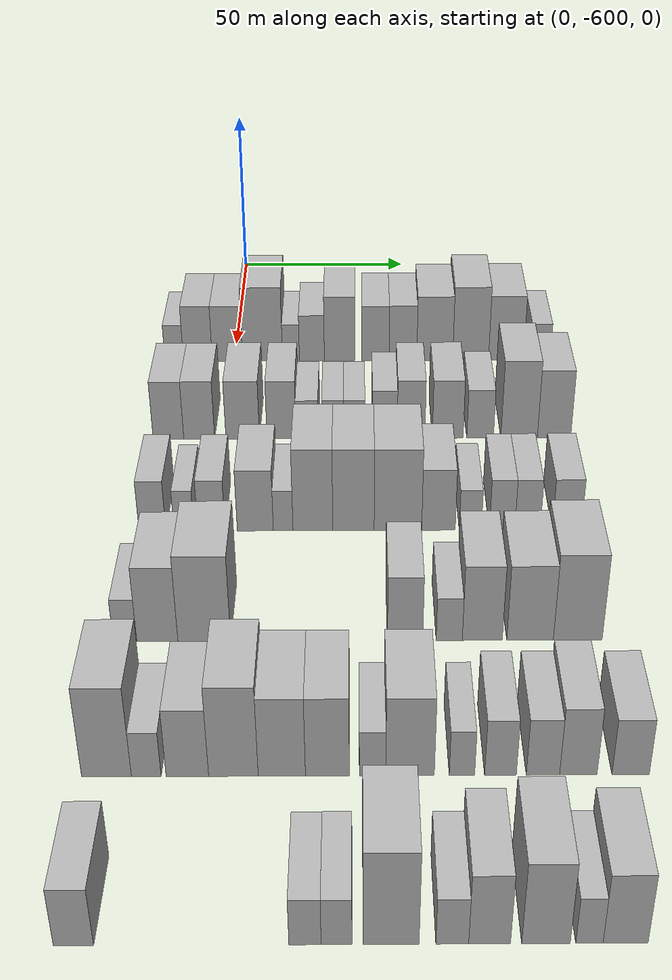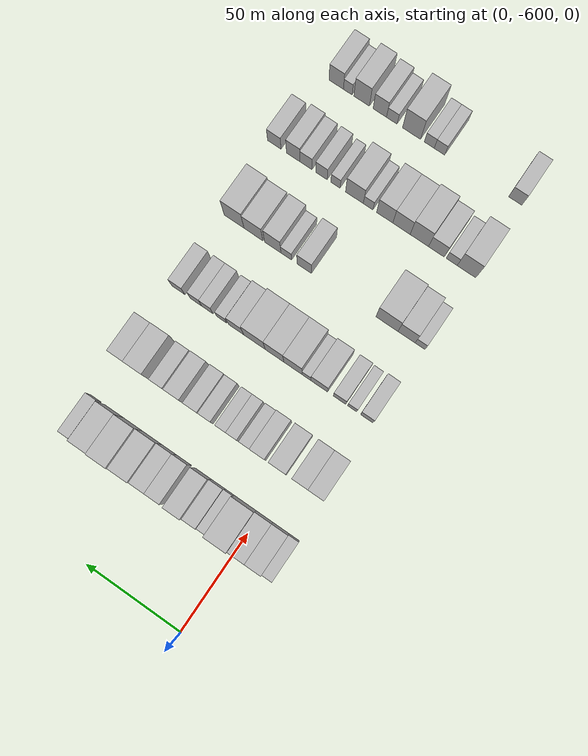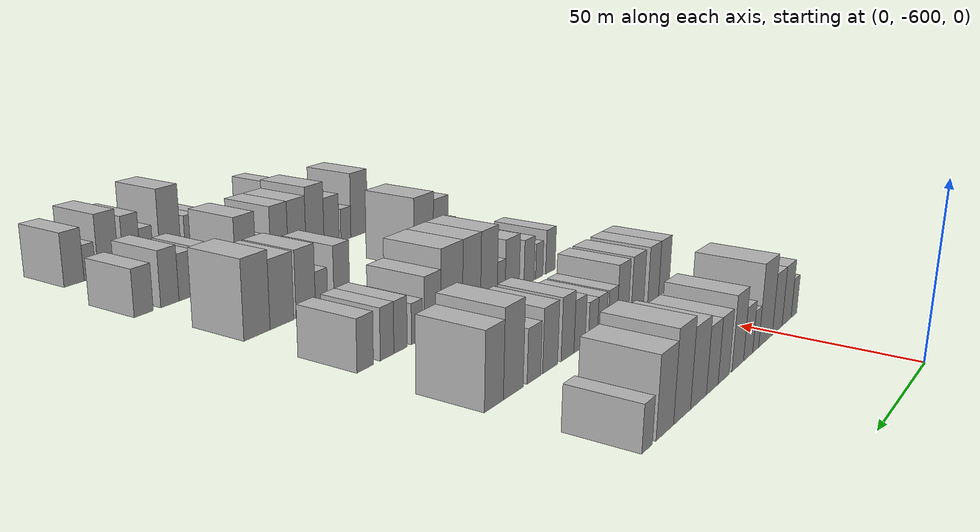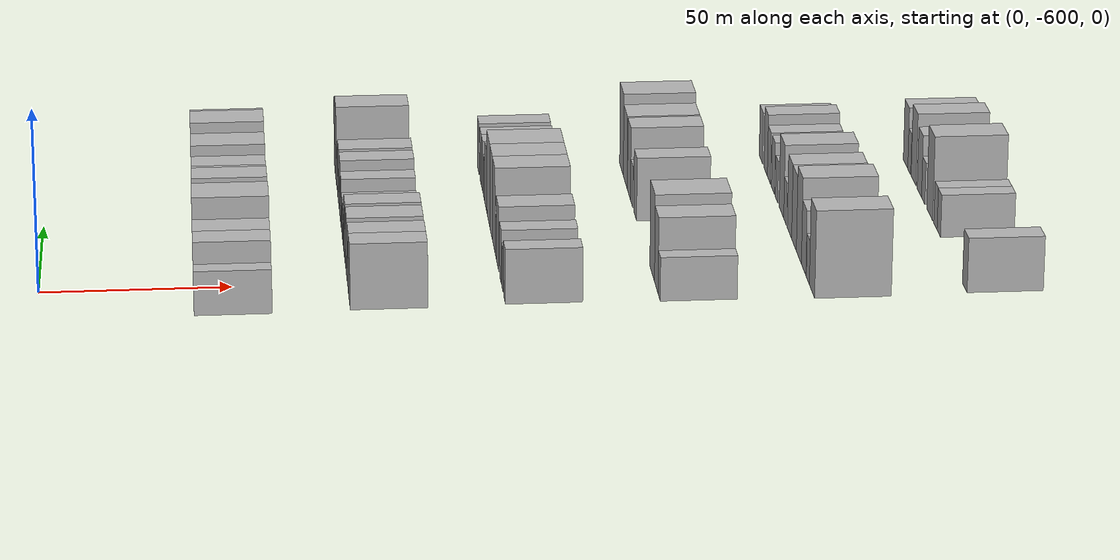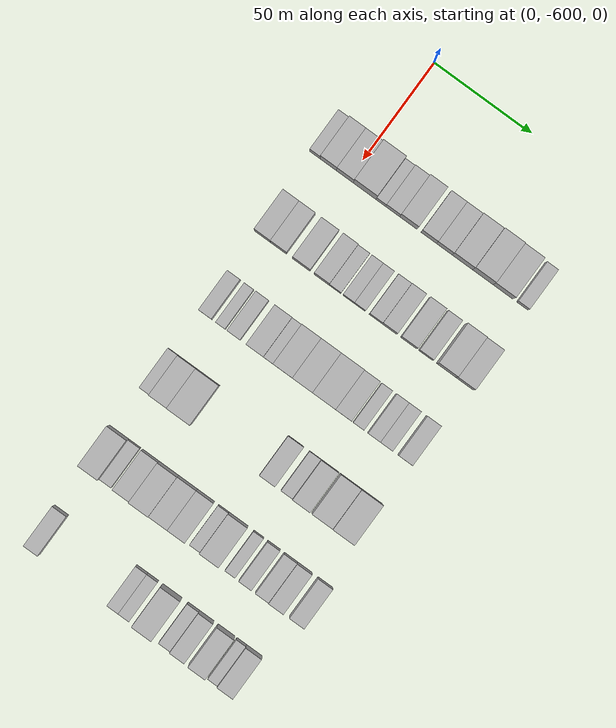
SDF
<sdf version="1.6">
 <world name="default">
  <model name="building_1">
   <static>1</static>
   <pose>50.0000 -617.3357 0 0.000000 0.000000 0.000000</pose>
   <link name="link">
    <pose>0 0 6.00 0 0 0</pose>
    <collision name="collision"><geometry><box><size>20.0000 5.3287 12.0000</size></box></geometry></collision>
    <visual name="visual">
     <cast_shadows>0</cast_shadows>
     <geometry><box><size>20.0000 5.3287 12.0000</size></box></geometry>
     <material>
      <script>
       <uri>model://HANNAS_wall/materials/scripts</uri>
       <uri>model://HANNAS_wall/materials/textures</uri>
       <name>vrc/HANNAS_wall</name>
      </script>
     </material>
    </visual>
   </link>
  </model>
  <model name="building_2">
   <static>1</static>
   <pose>50.0000 -610.4913 0 0.000000 0.000000 0.000000</pose>
   <link name="link">
    <pose>0 0 9.00 0 0 0</pose>
    <collision name="collision"><geometry><box><size>20.0000 8.3600 18.0000</size></box></geometry></collision>
    <visual name="visual">
     <cast_shadows>0</cast_shadows>
     <geometry><box><size>20.0000 8.3600 18.0000</size></box></geometry>
     <material>
      <script>
       <uri>model://HANNAS_wall/materials/scripts</uri>
       <uri>model://HANNAS_wall/materials/textures</uri>
       <name>vrc/HANNAS_wall</name>
      </script>
     </material>
    </visual>
   </link>
  </model>
  <model name="building_3">
   <static>1</static>
   <pose>50.0000 -601.9444 0 0.000000 0.000000 0.000000</pose>
   <link name="link">
    <pose>0 0 9.00 0 0 0</pose>
    <collision name="collision"><geometry><box><size>20.0000 8.7338 18.0000</size></box></geometry></collision>
    <visual name="visual">
     <cast_shadows>0</cast_shadows>
     <geometry><box><size>20.0000 8.7338 18.0000</size></box></geometry>
     <material>
      <script>
       <uri>model://HANNAS_wall/materials/scripts</uri>
       <uri>model://HANNAS_wall/materials/textures</uri>
       <name>vrc/HANNAS_wall</name>
      </script>
     </material>
    </visual>
   </link>
  </model>
  <model name="building_4">
   <static>1</static>
   <pose>50.0000 -591.7958 0 0.000000 0.000000 0.000000</pose>
   <link name="link">
    <pose>0 0 12.00 0 0 0</pose>
    <collision name="collision"><geometry><box><size>20.0000 11.5633 24.0000</size></box></geometry></collision>
    <visual name="visual">
     <cast_shadows>0</cast_shadows>
     <geometry><box><size>20.0000 11.5633 24.0000</size></box></geometry>
     <material>
      <script>
       <uri>model://HANNAS_wall/materials/scripts</uri>
       <uri>model://HANNAS_wall/materials/textures</uri>
       <name>vrc/HANNAS_wall</name>
      </script>
     </material>
    </visual>
   </link>
  </model>
  <model name="building_5">
   <static>1</static>
   <pose>50.0000 -583.5711 0 0.000000 0.000000 0.000000</pose>
   <link name="link">
    <pose>0 0 6.00 0 0 0</pose>
    <collision name="collision"><geometry><box><size>20.0000 4.8861 12.0000</size></box></geometry></collision>
    <visual name="visual">
     <cast_shadows>0</cast_shadows>
     <geometry><box><size>20.0000 4.8861 12.0000</size></box></geometry>
     <material>
      <script>
       <uri>model://HANNAS_wall/materials/scripts</uri>
       <uri>model://HANNAS_wall/materials/textures</uri>
       <name>vrc/HANNAS_wall</name>
      </script>
     </material>
    </visual>
   </link>
  </model>
  <model name="building_6">
   <static>1</static>
   <pose>50.0000 -577.5189 0 0.000000 0.000000 0.000000</pose>
   <link name="link">
    <pose>0 0 7.50 0 0 0</pose>
    <collision name="collision"><geometry><box><size>20.0000 7.2183 15.0000</size></box></geometry></collision>
    <visual name="visual">
     <cast_shadows>0</cast_shadows>
     <geometry><box><size>20.0000 7.2183 15.0000</size></box></geometry>
     <material>
      <script>
       <uri>model://HANNAS_wall/materials/scripts</uri>
       <uri>model://HANNAS_wall/materials/textures</uri>
       <name>vrc/HANNAS_wall</name>
      </script>
     </material>
    </visual>
   </link>
  </model>
  <model name="building_7">
   <static>1</static>
   <pose>50.0000 -569.4962 0 0.000000 0.000000 0.000000</pose>
   <link name="link">
    <pose>0 0 10.50 0 0 0</pose>
    <collision name="collision"><geometry><box><size>20.0000 8.8271 21.0000</size></box></geometry></collision>
    <visual name="visual">
     <cast_shadows>0</cast_shadows>
     <geometry><box><size>20.0000 8.8271 21.0000</size></box></geometry>
     <material>
      <script>
       <uri>model://HANNAS_wall/materials/scripts</uri>
       <uri>model://HANNAS_wall/materials/textures</uri>
       <name>vrc/HANNAS_wall</name>
      </script>
     </material>
    </visual>
   </link>
  </model>
  <model name="building_8">
   <static>1</static>
   <pose>50.0000 -559.1384 0 0.000000 0.000000 0.000000</pose>
   <link name="link">
    <pose>0 0 9.00 0 0 0</pose>
    <collision name="collision"><geometry><box><size>20.0000 7.8884 18.0000</size></box></geometry></collision>
    <visual name="visual">
     <cast_shadows>0</cast_shadows>
     <geometry><box><size>20.0000 7.8884 18.0000</size></box></geometry>
     <material>
      <script>
       <uri>model://HANNAS_wall/materials/scripts</uri>
       <uri>model://HANNAS_wall/materials/textures</uri>
       <name>vrc/HANNAS_wall</name>
      </script>
     </material>
    </visual>
   </link>
  </model>
  <model name="building_9">
   <static>1</static>
   <pose>50.0000 -551.1819 0 0.000000 0.000000 0.000000</pose>
   <link name="link">
    <pose>0 0 9.00 0 0 0</pose>
    <collision name="collision"><geometry><box><size>20.0000 8.0247 18.0000</size></box></geometry></collision>
    <visual name="visual">
     <cast_shadows>0</cast_shadows>
     <geometry><box><size>20.0000 8.0247 18.0000</size></box></geometry>
     <material>
      <script>
       <uri>model://HANNAS_wall/materials/scripts</uri>
       <uri>model://HANNAS_wall/materials/textures</uri>
       <name>vrc/HANNAS_wall</name>
      </script>
     </material>
    </visual>
   </link>
  </model>
  <model name="building_10">
   <static>1</static>
   <pose>50.0000 -541.9801 0 0.000000 0.000000 0.000000</pose>
   <link name="link">
    <pose>0 0 10.50 0 0 0</pose>
    <collision name="collision"><geometry><box><size>20.0000 10.3789 21.0000</size></box></geometry></collision>
    <visual name="visual">
     <cast_shadows>0</cast_shadows>
     <geometry><box><size>20.0000 10.3789 21.0000</size></box></geometry>
     <material>
      <script>
       <uri>model://HANNAS_wall/materials/scripts</uri>
       <uri>model://HANNAS_wall/materials/textures</uri>
       <name>vrc/HANNAS_wall</name>
      </script>
     </material>
    </visual>
   </link>
  </model>
  <model name="building_11">
   <static>1</static>
   <pose>50.0000 -531.5980 0 0.000000 0.000000 0.000000</pose>
   <link name="link">
    <pose>0 0 12.00 0 0 0</pose>
    <collision name="collision"><geometry><box><size>20.0000 10.3853 24.0000</size></box></geometry></collision>
    <visual name="visual">
     <cast_shadows>0</cast_shadows>
     <geometry><box><size>20.0000 10.3853 24.0000</size></box></geometry>
     <material>
      <script>
       <uri>model://HANNAS_wall/materials/scripts</uri>
       <uri>model://HANNAS_wall/materials/textures</uri>
       <name>vrc/HANNAS_wall</name>
      </script>
     </material>
    </visual>
   </link>
  </model>
  <model name="building_12">
   <static>1</static>
   <pose>50.0000 -521.3381 0 0.000000 0.000000 0.000000</pose>
   <link name="link">
    <pose>0 0 10.50 0 0 0</pose>
    <collision name="collision"><geometry><box><size>20.0000 10.1346 21.0000</size></box></geometry></collision>
    <visual name="visual">
     <cast_shadows>0</cast_shadows>
     <geometry><box><size>20.0000 10.1346 21.0000</size></box></geometry>
     <material>
      <script>
       <uri>model://HANNAS_wall/materials/scripts</uri>
       <uri>model://HANNAS_wall/materials/textures</uri>
       <name>vrc/HANNAS_wall</name>
      </script>
     </material>
    </visual>
   </link>
  </model>
  <model name="building_13">
   <static>1</static>
   <pose>50.0000 -511.3962 0 0.000000 0.000000 0.000000</pose>
   <link name="link">
    <pose>0 0 6.00 0 0 0</pose>
    <collision name="collision"><geometry><box><size>20.0000 5.7492 12.0000</size></box></geometry></collision>
    <visual name="visual">
     <cast_shadows>0</cast_shadows>
     <geometry><box><size>20.0000 5.7492 12.0000</size></box></geometry>
     <material>
      <script>
       <uri>model://HANNAS_wall/materials/scripts</uri>
       <uri>model://HANNAS_wall/materials/textures</uri>
       <name>vrc/HANNAS_wall</name>
      </script>
     </material>
    </visual>
   </link>
  </model>
  <model name="building_138">
   <static>1</static>
   <pose>90.0000 -614.9157 0 0.000000 0.000000 0.000000</pose>
   <link name="link">
    <pose>0 0 9.00 0 0 0</pose>
    <collision name="collision"><geometry><box><size>20.0000 8.1687 18.0000</size></box></geometry></collision>
    <visual name="visual">
     <cast_shadows>0</cast_shadows>
     <geometry><box><size>20.0000 8.1687 18.0000</size></box></geometry>
     <material>
      <script>
       <uri>model://HANNAS_wall/materials/scripts</uri>
       <uri>model://HANNAS_wall/materials/textures</uri>
       <name>vrc/HANNAS_wall</name>
      </script>
     </material>
    </visual>
   </link>
  </model>
  <model name="building_139">
   <static>1</static>
   <pose>90.0000 -606.7038 0 0.000000 0.000000 0.000000</pose>
   <link name="link">
    <pose>0 0 9.00 0 0 0</pose>
    <collision name="collision"><geometry><box><size>20.0000 8.2551 18.0000</size></box></geometry></collision>
    <visual name="visual">
     <cast_shadows>0</cast_shadows>
     <geometry><box><size>20.0000 8.2551 18.0000</size></box></geometry>
     <material>
      <script>
       <uri>model://HANNAS_wall/materials/scripts</uri>
       <uri>model://HANNAS_wall/materials/textures</uri>
       <name>vrc/HANNAS_wall</name>
      </script>
     </material>
    </visual>
   </link>
  </model>
  <model name="building_140">
   <static>1</static>
   <pose>90.0000 -595.0911 0 0.000000 0.000000 0.000000</pose>
   <link name="link">
    <pose>0 0 9.00 0 0 0</pose>
    <collision name="collision"><geometry><box><size>20.0000 8.9703 18.0000</size></box></geometry></collision>
    <visual name="visual">
     <cast_shadows>0</cast_shadows>
     <geometry><box><size>20.0000 8.9703 18.0000</size></box></geometry>
     <material>
      <script>
       <uri>model://HANNAS_wall/materials/scripts</uri>
       <uri>model://HANNAS_wall/materials/textures</uri>
       <name>vrc/HANNAS_wall</name>
      </script>
     </material>
    </visual>
   </link>
  </model>
  <model name="building_141">
   <static>1</static>
   <pose>90.0000 -584.7435 0 0.000000 0.000000 0.000000</pose>
   <link name="link">
    <pose>0 0 9.00 0 0 0</pose>
    <collision name="collision"><geometry><box><size>20.0000 7.7249 18.0000</size></box></geometry></collision>
    <visual name="visual">
     <cast_shadows>0</cast_shadows>
     <geometry><box><size>20.0000 7.7249 18.0000</size></box></geometry>
     <material>
      <script>
       <uri>model://HANNAS_wall/materials/scripts</uri>
       <uri>model://HANNAS_wall/materials/textures</uri>
       <name>vrc/HANNAS_wall</name>
      </script>
     </material>
    </visual>
   </link>
  </model>
  <model name="building_142">
   <static>1</static>
   <pose>90.0000 -577.8918 0 0.000000 0.000000 0.000000</pose>
   <link name="link">
    <pose>0 0 6.00 0 0 0</pose>
    <collision name="collision"><geometry><box><size>20.0000 5.9784 12.0000</size></box></geometry></collision>
    <visual name="visual">
     <cast_shadows>0</cast_shadows>
     <geometry><box><size>20.0000 5.9784 12.0000</size></box></geometry>
     <material>
      <script>
       <uri>model://HANNAS_wall/materials/scripts</uri>
       <uri>model://HANNAS_wall/materials/textures</uri>
       <name>vrc/HANNAS_wall</name>
      </script>
     </material>
    </visual>
   </link>
  </model>
  <model name="building_143">
   <static>1</static>
   <pose>90.0000 -571.0173 0 0.000000 0.000000 0.000000</pose>
   <link name="link">
    <pose>0 0 6.00 0 0 0</pose>
    <collision name="collision"><geometry><box><size>20.0000 5.7706 12.0000</size></box></geometry></collision>
    <visual name="visual">
     <cast_shadows>0</cast_shadows>
     <geometry><box><size>20.0000 5.7706 12.0000</size></box></geometry>
     <material>
      <script>
       <uri>model://HANNAS_wall/materials/scripts</uri>
       <uri>model://HANNAS_wall/materials/textures</uri>
       <name>vrc/HANNAS_wall</name>
      </script>
     </material>
    </visual>
   </link>
  </model>
  <model name="building_144">
   <static>1</static>
   <pose>90.0000 -565.3025 0 0.000000 0.000000 0.000000</pose>
   <link name="link">
    <pose>0 0 6.00 0 0 0</pose>
    <collision name="collision"><geometry><box><size>20.0000 5.6590 12.0000</size></box></geometry></collision>
    <visual name="visual">
     <cast_shadows>0</cast_shadows>
     <geometry><box><size>20.0000 5.6590 12.0000</size></box></geometry>
     <material>
      <script>
       <uri>model://HANNAS_wall/materials/scripts</uri>
       <uri>model://HANNAS_wall/materials/textures</uri>
       <name>vrc/HANNAS_wall</name>
      </script>
     </material>
    </visual>
   </link>
  </model>
  <model name="building_145">
   <static>1</static>
   <pose>90.0000 -557.1500 0 0.000000 0.000000 0.000000</pose>
   <link name="link">
    <pose>0 0 7.50 0 0 0</pose>
    <collision name="collision"><geometry><box><size>20.0000 6.6462 15.0000</size></box></geometry></collision>
    <visual name="visual">
     <cast_shadows>0</cast_shadows>
     <geometry><box><size>20.0000 6.6462 15.0000</size></box></geometry>
     <material>
      <script>
       <uri>model://HANNAS_wall/materials/scripts</uri>
       <uri>model://HANNAS_wall/materials/textures</uri>
       <name>vrc/HANNAS_wall</name>
      </script>
     </material>
    </visual>
   </link>
  </model>
  <model name="building_146">
   <static>1</static>
   <pose>90.0000 -550.1418 0 0.000000 0.000000 0.000000</pose>
   <link name="link">
    <pose>0 0 9.00 0 0 0</pose>
    <collision name="collision"><geometry><box><size>20.0000 7.3701 18.0000</size></box></geometry></collision>
    <visual name="visual">
     <cast_shadows>0</cast_shadows>
     <geometry><box><size>20.0000 7.3701 18.0000</size></box></geometry>
     <material>
      <script>
       <uri>model://HANNAS_wall/materials/scripts</uri>
       <uri>model://HANNAS_wall/materials/textures</uri>
       <name>vrc/HANNAS_wall</name>
      </script>
     </material>
    </visual>
   </link>
  </model>
  <model name="building_147">
   <static>1</static>
   <pose>90.0000 -540.3458 0 0.000000 0.000000 0.000000</pose>
   <link name="link">
    <pose>0 0 9.00 0 0 0</pose>
    <collision name="collision"><geometry><box><size>20.0000 8.2220 18.0000</size></box></geometry></collision>
    <visual name="visual">
     <cast_shadows>0</cast_shadows>
     <geometry><box><size>20.0000 8.2220 18.0000</size></box></geometry>
     <material>
      <script>
       <uri>model://HANNAS_wall/materials/scripts</uri>
       <uri>model://HANNAS_wall/materials/textures</uri>
       <name>vrc/HANNAS_wall</name>
      </script>
     </material>
    </visual>
   </link>
  </model>
  <model name="building_148">
   <static>1</static>
   <pose>90.0000 -531.6814 0 0.000000 0.000000 0.000000</pose>
   <link name="link">
    <pose>0 0 7.50 0 0 0</pose>
    <collision name="collision"><geometry><box><size>20.0000 7.1068 15.0000</size></box></geometry></collision>
    <visual name="visual">
     <cast_shadows>0</cast_shadows>
     <geometry><box><size>20.0000 7.1068 15.0000</size></box></geometry>
     <material>
      <script>
       <uri>model://HANNAS_wall/materials/scripts</uri>
       <uri>model://HANNAS_wall/materials/textures</uri>
       <name>vrc/HANNAS_wall</name>
      </script>
     </material>
    </visual>
   </link>
  </model>
  <model name="building_149">
   <static>1</static>
   <pose>90.0000 -521.2518 0 0.000000 0.000000 0.000000</pose>
   <link name="link">
    <pose>0 0 12.00 0 0 0</pose>
    <collision name="collision"><geometry><box><size>20.0000 9.7524 24.0000</size></box></geometry></collision>
    <visual name="visual">
     <cast_shadows>0</cast_shadows>
     <geometry><box><size>20.0000 9.7524 24.0000</size></box></geometry>
     <material>
      <script>
       <uri>model://HANNAS_wall/materials/scripts</uri>
       <uri>model://HANNAS_wall/materials/textures</uri>
       <name>vrc/HANNAS_wall</name>
      </script>
     </material>
    </visual>
   </link>
  </model>
  <model name="building_150">
   <static>1</static>
   <pose>90.0000 -511.9229 0 0.000000 0.000000 0.000000</pose>
   <link name="link">
    <pose>0 0 10.50 0 0 0</pose>
    <collision name="collision"><geometry><box><size>20.0000 8.9054 21.0000</size></box></geometry></collision>
    <visual name="visual">
     <cast_shadows>0</cast_shadows>
     <geometry><box><size>20.0000 8.9054 21.0000</size></box></geometry>
     <material>
      <script>
       <uri>model://HANNAS_wall/materials/scripts</uri>
       <uri>model://HANNAS_wall/materials/textures</uri>
       <name>vrc/HANNAS_wall</name>
      </script>
     </material>
    </visual>
   </link>
  </model>
  <model name="building_283">
   <static>1</static>
   <pose>130.0000 -614.7281 0 0.000000 0.000000 0.000000</pose>
   <link name="link">
    <pose>0 0 7.50 0 0 0</pose>
    <collision name="collision"><geometry><box><size>20.0000 6.5438 15.0000</size></box></geometry></collision>
    <visual name="visual">
     <cast_shadows>0</cast_shadows>
     <geometry><box><size>20.0000 6.5438 15.0000</size></box></geometry>
     <material>
      <script>
       <uri>model://HANNAS_wall/materials/scripts</uri>
       <uri>model://HANNAS_wall/materials/textures</uri>
       <name>vrc/HANNAS_wall</name>
      </script>
     </material>
    </visual>
   </link>
  </model>
  <model name="building_284">
   <static>1</static>
   <pose>130.0000 -607.0380 0 0.000000 0.000000 0.000000</pose>
   <link name="link">
    <pose>0 0 6.00 0 0 0</pose>
    <collision name="collision"><geometry><box><size>20.0000 4.8364 12.0000</size></box></geometry></collision>
    <visual name="visual">
     <cast_shadows>0</cast_shadows>
     <geometry><box><size>20.0000 4.8364 12.0000</size></box></geometry>
     <material>
      <script>
       <uri>model://HANNAS_wall/materials/scripts</uri>
       <uri>model://HANNAS_wall/materials/textures</uri>
       <name>vrc/HANNAS_wall</name>
      </script>
     </material>
    </visual>
   </link>
  </model>
  <model name="building_285">
   <static>1</static>
   <pose>130.0000 -600.2972 0 0.000000 0.000000 0.000000</pose>
   <link name="link">
    <pose>0 0 7.50 0 0 0</pose>
    <collision name="collision"><geometry><box><size>20.0000 6.6451 15.0000</size></box></geometry></collision>
    <visual name="visual">
     <cast_shadows>0</cast_shadows>
     <geometry><box><size>20.0000 6.6451 15.0000</size></box></geometry>
     <material>
      <script>
       <uri>model://HANNAS_wall/materials/scripts</uri>
       <uri>model://HANNAS_wall/materials/textures</uri>
       <name>vrc/HANNAS_wall</name>
      </script>
     </material>
    </visual>
   </link>
  </model>
  <model name="building_286">
   <static>1</static>
   <pose>130.0000 -589.5657 0 0.000000 0.000000 0.000000</pose>
   <link name="link">
    <pose>0 0 9.00 0 0 0</pose>
    <collision name="collision"><geometry><box><size>20.0000 8.8179 18.0000</size></box></geometry></collision>
    <visual name="visual">
     <cast_shadows>0</cast_shadows>
     <geometry><box><size>20.0000 8.8179 18.0000</size></box></geometry>
     <material>
      <script>
       <uri>model://HANNAS_wall/materials/scripts</uri>
       <uri>model://HANNAS_wall/materials/textures</uri>
       <name>vrc/HANNAS_wall</name>
      </script>
     </material>
    </visual>
   </link>
  </model>
  <model name="building_287">
   <static>1</static>
   <pose>130.0000 -582.7508 0 0.000000 0.000000 0.000000</pose>
   <link name="link">
    <pose>0 0 6.00 0 0 0</pose>
    <collision name="collision"><geometry><box><size>20.0000 4.8119 12.0000</size></box></geometry></collision>
    <visual name="visual">
     <cast_shadows>0</cast_shadows>
     <geometry><box><size>20.0000 4.8119 12.0000</size></box></geometry>
     <material>
      <script>
       <uri>model://HANNAS_wall/materials/scripts</uri>
       <uri>model://HANNAS_wall/materials/textures</uri>
       <name>vrc/HANNAS_wall</name>
      </script>
     </material>
    </visual>
   </link>
  </model>
  <model name="building_288">
   <static>1</static>
   <pose>130.0000 -575.4701 0 0.000000 0.000000 0.000000</pose>
   <link name="link">
    <pose>0 0 12.00 0 0 0</pose>
    <collision name="collision"><geometry><box><size>20.0000 9.7495 24.0000</size></box></geometry></collision>
    <visual name="visual">
     <cast_shadows>0</cast_shadows>
     <geometry><box><size>20.0000 9.7495 24.0000</size></box></geometry>
     <material>
      <script>
       <uri>model://HANNAS_wall/materials/scripts</uri>
       <uri>model://HANNAS_wall/materials/textures</uri>
       <name>vrc/HANNAS_wall</name>
      </script>
     </material>
    </visual>
   </link>
  </model>
  <model name="building_289">
   <static>1</static>
   <pose>130.0000 -565.5393 0 0.000000 0.000000 0.000000</pose>
   <link name="link">
    <pose>0 0 12.00 0 0 0</pose>
    <collision name="collision"><geometry><box><size>20.0000 10.1120 24.0000</size></box></geometry></collision>
    <visual name="visual">
     <cast_shadows>0</cast_shadows>
     <geometry><box><size>20.0000 10.1120 24.0000</size></box></geometry>
     <material>
      <script>
       <uri>model://HANNAS_wall/materials/scripts</uri>
       <uri>model://HANNAS_wall/materials/textures</uri>
       <name>vrc/HANNAS_wall</name>
      </script>
     </material>
    </visual>
   </link>
  </model>
  <model name="building_290">
   <static>1</static>
   <pose>130.0000 -554.6581 0 0.000000 0.000000 0.000000</pose>
   <link name="link">
    <pose>0 0 12.00 0 0 0</pose>
    <collision name="collision"><geometry><box><size>20.0000 11.6505 24.0000</size></box></geometry></collision>
    <visual name="visual">
     <cast_shadows>0</cast_shadows>
     <geometry><box><size>20.0000 11.6505 24.0000</size></box></geometry>
     <material>
      <script>
       <uri>model://HANNAS_wall/materials/scripts</uri>
       <uri>model://HANNAS_wall/materials/textures</uri>
       <name>vrc/HANNAS_wall</name>
      </script>
     </material>
    </visual>
   </link>
  </model>
  <model name="building_291">
   <static>1</static>
   <pose>130.0000 -544.7339 0 0.000000 0.000000 0.000000</pose>
   <link name="link">
    <pose>0 0 9.00 0 0 0</pose>
    <collision name="collision"><geometry><box><size>20.0000 8.1980 18.0000</size></box></geometry></collision>
    <visual name="visual">
     <cast_shadows>0</cast_shadows>
     <geometry><box><size>20.0000 8.1980 18.0000</size></box></geometry>
     <material>
      <script>
       <uri>model://HANNAS_wall/materials/scripts</uri>
       <uri>model://HANNAS_wall/materials/textures</uri>
       <name>vrc/HANNAS_wall</name>
      </script>
     </material>
    </visual>
   </link>
  </model>
  <model name="building_292">
   <static>1</static>
   <pose>130.0000 -536.9296 0 0.000000 0.000000 0.000000</pose>
   <link name="link">
    <pose>0 0 6.00 0 0 0</pose>
    <collision name="collision"><geometry><box><size>20.0000 5.4107 12.0000</size></box></geometry></collision>
    <visual name="visual">
     <cast_shadows>0</cast_shadows>
     <geometry><box><size>20.0000 5.4107 12.0000</size></box></geometry>
     <material>
      <script>
       <uri>model://HANNAS_wall/materials/scripts</uri>
       <uri>model://HANNAS_wall/materials/textures</uri>
       <name>vrc/HANNAS_wall</name>
      </script>
     </material>
    </visual>
   </link>
  </model>
  <model name="building_293">
   <static>1</static>
   <pose>130.0000 -529.1170 0 0.000000 0.000000 0.000000</pose>
   <link name="link">
    <pose>0 0 7.50 0 0 0</pose>
    <collision name="collision"><geometry><box><size>20.0000 6.2145 15.0000</size></box></geometry></collision>
    <visual name="visual">
     <cast_shadows>0</cast_shadows>
     <geometry><box><size>20.0000 6.2145 15.0000</size></box></geometry>
     <material>
      <script>
       <uri>model://HANNAS_wall/materials/scripts</uri>
       <uri>model://HANNAS_wall/materials/textures</uri>
       <name>vrc/HANNAS_wall</name>
      </script>
     </material>
    </visual>
   </link>
  </model>
  <model name="building_294">
   <static>1</static>
   <pose>130.0000 -522.9071 0 0.000000 0.000000 0.000000</pose>
   <link name="link">
    <pose>0 0 7.50 0 0 0</pose>
    <collision name="collision"><geometry><box><size>20.0000 6.2052 15.0000</size></box></geometry></collision>
    <visual name="visual">
     <cast_shadows>0</cast_shadows>
     <geometry><box><size>20.0000 6.2052 15.0000</size></box></geometry>
     <material>
      <script>
       <uri>model://HANNAS_wall/materials/scripts</uri>
       <uri>model://HANNAS_wall/materials/textures</uri>
       <name>vrc/HANNAS_wall</name>
      </script>
     </material>
    </visual>
   </link>
  </model>
  <model name="building_295">
   <static>1</static>
   <pose>130.0000 -513.2534 0 0.000000 0.000000 0.000000</pose>
   <link name="link">
    <pose>0 0 7.50 0 0 0</pose>
    <collision name="collision"><geometry><box><size>20.0000 7.1022 15.0000</size></box></geometry></collision>
    <visual name="visual">
     <cast_shadows>0</cast_shadows>
     <geometry><box><size>20.0000 7.1022 15.0000</size></box></geometry>
     <material>
      <script>
       <uri>model://HANNAS_wall/materials/scripts</uri>
       <uri>model://HANNAS_wall/materials/textures</uri>
       <name>vrc/HANNAS_wall</name>
      </script>
     </material>
    </visual>
   </link>
  </model>
  <model name="building_421">
   <static>1</static>
   <pose>170.0000 -616.3783 0 0.000000 0.000000 0.000000</pose>
   <link name="link">
    <pose>0 0 6.00 0 0 0</pose>
    <collision name="collision"><geometry><box><size>20.0000 5.2434 12.0000</size></box></geometry></collision>
    <visual name="visual">
     <cast_shadows>0</cast_shadows>
     <geometry><box><size>20.0000 5.2434 12.0000</size></box></geometry>
     <material>
      <script>
       <uri>model://HANNAS_wall/materials/scripts</uri>
       <uri>model://HANNAS_wall/materials/textures</uri>
       <name>vrc/HANNAS_wall</name>
      </script>
     </material>
    </visual>
   </link>
  </model>
  <model name="building_422">
   <static>1</static>
   <pose>170.0000 -609.1865 0 0.000000 0.000000 0.000000</pose>
   <link name="link">
    <pose>0 0 10.50 0 0 0</pose>
    <collision name="collision"><geometry><box><size>20.0000 9.1401 21.0000</size></box></geometry></collision>
    <visual name="visual">
     <cast_shadows>0</cast_shadows>
     <geometry><box><size>20.0000 9.1401 21.0000</size></box></geometry>
     <material>
      <script>
       <uri>model://HANNAS_wall/materials/scripts</uri>
       <uri>model://HANNAS_wall/materials/textures</uri>
       <name>vrc/HANNAS_wall</name>
      </script>
     </material>
    </visual>
   </link>
  </model>
  <model name="building_423">
   <static>1</static>
   <pose>170.0000 -598.7415 0 0.000000 0.000000 0.000000</pose>
   <link name="link">
    <pose>0 0 12.00 0 0 0</pose>
    <collision name="collision"><geometry><box><size>20.0000 11.7500 24.0000</size></box></geometry></collision>
    <visual name="visual">
     <cast_shadows>0</cast_shadows>
     <geometry><box><size>20.0000 11.7500 24.0000</size></box></geometry>
     <material>
      <script>
       <uri>model://HANNAS_wall/materials/scripts</uri>
       <uri>model://HANNAS_wall/materials/textures</uri>
       <name>vrc/HANNAS_wall</name>
      </script>
     </material>
    </visual>
   </link>
  </model>
  <model name="building_424">
   <static>1</static>
   <pose>170.0000 -554.0886 0 0.000000 0.000000 0.000000</pose>
   <link name="link">
    <pose>0 0 9.00 0 0 0</pose>
    <collision name="collision"><geometry><box><size>20.0000 7.8520 18.0000</size></box></geometry></collision>
    <visual name="visual">
     <cast_shadows>0</cast_shadows>
     <geometry><box><size>20.0000 7.8520 18.0000</size></box></geometry>
     <material>
      <script>
       <uri>model://HANNAS_wall/materials/scripts</uri>
       <uri>model://HANNAS_wall/materials/textures</uri>
       <name>vrc/HANNAS_wall</name>
      </script>
     </material>
    </visual>
   </link>
  </model>
  <model name="building_425">
   <static>1</static>
   <pose>170.0000 -544.2541 0 0.000000 0.000000 0.000000</pose>
   <link name="link">
    <pose>0 0 6.00 0 0 0</pose>
    <collision name="collision"><geometry><box><size>20.0000 5.8169 12.0000</size></box></geometry></collision>
    <visual name="visual">
     <cast_shadows>0</cast_shadows>
     <geometry><box><size>20.0000 5.8169 12.0000</size></box></geometry>
     <material>
      <script>
       <uri>model://HANNAS_wall/materials/scripts</uri>
       <uri>model://HANNAS_wall/materials/textures</uri>
       <name>vrc/HANNAS_wall</name>
      </script>
     </material>
    </visual>
   </link>
  </model>
  <model name="building_426">
   <static>1</static>
   <pose>170.0000 -536.8864 0 0.000000 0.000000 0.000000</pose>
   <link name="link">
    <pose>0 0 10.50 0 0 0</pose>
    <collision name="collision"><geometry><box><size>20.0000 8.9185 21.0000</size></box></geometry></collision>
    <visual name="visual">
     <cast_shadows>0</cast_shadows>
     <geometry><box><size>20.0000 8.9185 21.0000</size></box></geometry>
     <material>
      <script>
       <uri>model://HANNAS_wall/materials/scripts</uri>
       <uri>model://HANNAS_wall/materials/textures</uri>
       <name>vrc/HANNAS_wall</name>
      </script>
     </material>
    </visual>
   </link>
  </model>
  <model name="building_427">
   <static>1</static>
   <pose>170.0000 -526.2453 0 0.000000 0.000000 0.000000</pose>
   <link name="link">
    <pose>0 0 10.50 0 0 0</pose>
    <collision name="collision"><geometry><box><size>20.0000 10.3637 21.0000</size></box></geometry></collision>
    <visual name="visual">
     <cast_shadows>0</cast_shadows>
     <geometry><box><size>20.0000 10.3637 21.0000</size></box></geometry>
     <material>
      <script>
       <uri>model://HANNAS_wall/materials/scripts</uri>
       <uri>model://HANNAS_wall/materials/textures</uri>
       <name>vrc/HANNAS_wall</name>
      </script>
     </material>
    </visual>
   </link>
  </model>
  <model name="building_428">
   <static>1</static>
   <pose>170.0000 -515.6190 0 0.000000 0.000000 0.000000</pose>
   <link name="link">
    <pose>0 0 12.00 0 0 0</pose>
    <collision name="collision"><geometry><box><size>20.0000 10.8889 24.0000</size></box></geometry></collision>
    <visual name="visual">
     <cast_shadows>0</cast_shadows>
     <geometry><box><size>20.0000 10.8889 24.0000</size></box></geometry>
     <material>
      <script>
       <uri>model://HANNAS_wall/materials/scripts</uri>
       <uri>model://HANNAS_wall/materials/textures</uri>
       <name>vrc/HANNAS_wall</name>
      </script>
     </material>
    </visual>
   </link>
  </model>
  <model name="building_556">
   <static>1</static>
   <pose>210.0000 -615.0199 0 0.000000 0.000000 0.000000</pose>
   <link name="link">
    <pose>0 0 12.00 0 0 0</pose>
    <collision name="collision"><geometry><box><size>20.0000 9.9602 24.0000</size></box></geometry></collision>
    <visual name="visual">
     <cast_shadows>0</cast_shadows>
     <geometry><box><size>20.0000 9.9602 24.0000</size></box></geometry>
     <material>
      <script>
       <uri>model://HANNAS_wall/materials/scripts</uri>
       <uri>model://HANNAS_wall/materials/textures</uri>
       <name>vrc/HANNAS_wall</name>
      </script>
     </material>
    </visual>
   </link>
  </model>
  <model name="building_557">
   <static>1</static>
   <pose>210.0000 -607.0669 0 0.000000 0.000000 0.000000</pose>
   <link name="link">
    <pose>0 0 6.00 0 0 0</pose>
    <collision name="collision"><geometry><box><size>20.0000 5.9457 12.0000</size></box></geometry></collision>
    <visual name="visual">
     <cast_shadows>0</cast_shadows>
     <geometry><box><size>20.0000 5.9457 12.0000</size></box></geometry>
     <material>
      <script>
       <uri>model://HANNAS_wall/materials/scripts</uri>
       <uri>model://HANNAS_wall/materials/textures</uri>
       <name>vrc/HANNAS_wall</name>
      </script>
     </material>
    </visual>
   </link>
  </model>
  <model name="building_558">
   <static>1</static>
   <pose>210.0000 -598.8408 0 0.000000 0.000000 0.000000</pose>
   <link name="link">
    <pose>0 0 9.00 0 0 0</pose>
    <collision name="collision"><geometry><box><size>20.0000 8.5066 18.0000</size></box></geometry></collision>
    <visual name="visual">
     <cast_shadows>0</cast_shadows>
     <geometry><box><size>20.0000 8.5066 18.0000</size></box></geometry>
     <material>
      <script>
       <uri>model://HANNAS_wall/materials/scripts</uri>
       <uri>model://HANNAS_wall/materials/textures</uri>
       <name>vrc/HANNAS_wall</name>
      </script>
     </material>
    </visual>
   </link>
  </model>
  <model name="building_559">
   <static>1</static>
   <pose>210.0000 -589.6246 0 0.000000 0.000000 0.000000</pose>
   <link name="link">
    <pose>0 0 12.00 0 0 0</pose>
    <collision name="collision"><geometry><box><size>20.0000 9.9258 24.0000</size></box></geometry></collision>
    <visual name="visual">
     <cast_shadows>0</cast_shadows>
     <geometry><box><size>20.0000 9.9258 24.0000</size></box></geometry>
     <material>
      <script>
       <uri>model://HANNAS_wall/materials/scripts</uri>
       <uri>model://HANNAS_wall/materials/textures</uri>
       <name>vrc/HANNAS_wall</name>
      </script>
     </material>
    </visual>
   </link>
  </model>
  <model name="building_560">
   <static>1</static>
   <pose>210.0000 -579.9361 0 0.000000 0.000000 0.000000</pose>
   <link name="link">
    <pose>0 0 10.50 0 0 0</pose>
    <collision name="collision"><geometry><box><size>20.0000 9.4512 21.0000</size></box></geometry></collision>
    <visual name="visual">
     <cast_shadows>0</cast_shadows>
     <geometry><box><size>20.0000 9.4512 21.0000</size></box></geometry>
     <material>
      <script>
       <uri>model://HANNAS_wall/materials/scripts</uri>
       <uri>model://HANNAS_wall/materials/textures</uri>
       <name>vrc/HANNAS_wall</name>
      </script>
     </material>
    </visual>
   </link>
  </model>
  <model name="building_561">
   <static>1</static>
   <pose>210.0000 -570.8133 0 0.000000 0.000000 0.000000</pose>
   <link name="link">
    <pose>0 0 10.50 0 0 0</pose>
    <collision name="collision"><geometry><box><size>20.0000 8.7944 21.0000</size></box></geometry></collision>
    <visual name="visual">
     <cast_shadows>0</cast_shadows>
     <geometry><box><size>20.0000 8.7944 21.0000</size></box></geometry>
     <material>
      <script>
       <uri>model://HANNAS_wall/materials/scripts</uri>
       <uri>model://HANNAS_wall/materials/textures</uri>
       <name>vrc/HANNAS_wall</name>
      </script>
     </material>
    </visual>
   </link>
  </model>
  <model name="building_562">
   <static>1</static>
   <pose>210.0000 -561.7731 0 0.000000 0.000000 0.000000</pose>
   <link name="link">
    <pose>0 0 6.00 0 0 0</pose>
    <collision name="collision"><geometry><box><size>20.0000 5.2861 12.0000</size></box></geometry></collision>
    <visual name="visual">
     <cast_shadows>0</cast_shadows>
     <geometry><box><size>20.0000 5.2861 12.0000</size></box></geometry>
     <material>
      <script>
       <uri>model://HANNAS_wall/materials/scripts</uri>
       <uri>model://HANNAS_wall/materials/textures</uri>
       <name>vrc/HANNAS_wall</name>
      </script>
     </material>
    </visual>
   </link>
  </model>
  <model name="building_563">
   <static>1</static>
   <pose>210.0000 -554.2704 0 0.000000 0.000000 0.000000</pose>
   <link name="link">
    <pose>0 0 10.50 0 0 0</pose>
    <collision name="collision"><geometry><box><size>20.0000 9.7191 21.0000</size></box></geometry></collision>
    <visual name="visual">
     <cast_shadows>0</cast_shadows>
     <geometry><box><size>20.0000 9.7191 21.0000</size></box></geometry>
     <material>
      <script>
       <uri>model://HANNAS_wall/materials/scripts</uri>
       <uri>model://HANNAS_wall/materials/textures</uri>
       <name>vrc/HANNAS_wall</name>
      </script>
     </material>
    </visual>
   </link>
  </model>
  <model name="building_564">
   <static>1</static>
   <pose>210.0000 -543.8657 0 0.000000 0.000000 0.000000</pose>
   <link name="link">
    <pose>0 0 6.00 0 0 0</pose>
    <collision name="collision"><geometry><box><size>20.0000 5.0904 12.0000</size></box></geometry></collision>
    <visual name="visual">
     <cast_shadows>0</cast_shadows>
     <geometry><box><size>20.0000 5.0904 12.0000</size></box></geometry>
     <material>
      <script>
       <uri>model://HANNAS_wall/materials/scripts</uri>
       <uri>model://HANNAS_wall/materials/textures</uri>
       <name>vrc/HANNAS_wall</name>
      </script>
     </material>
    </visual>
   </link>
  </model>
  <model name="building_565">
   <static>1</static>
   <pose>210.0000 -536.1419 0 0.000000 0.000000 0.000000</pose>
   <link name="link">
    <pose>0 0 7.50 0 0 0</pose>
    <collision name="collision"><geometry><box><size>20.0000 6.3572 15.0000</size></box></geometry></collision>
    <visual name="visual">
     <cast_shadows>0</cast_shadows>
     <geometry><box><size>20.0000 6.3572 15.0000</size></box></geometry>
     <material>
      <script>
       <uri>model://HANNAS_wall/materials/scripts</uri>
       <uri>model://HANNAS_wall/materials/textures</uri>
       <name>vrc/HANNAS_wall</name>
      </script>
     </material>
    </visual>
   </link>
  </model>
  <model name="building_566">
   <static>1</static>
   <pose>210.0000 -527.6233 0 0.000000 0.000000 0.000000</pose>
   <link name="link">
    <pose>0 0 7.50 0 0 0</pose>
    <collision name="collision"><geometry><box><size>20.0000 6.6799 15.0000</size></box></geometry></collision>
    <visual name="visual">
     <cast_shadows>0</cast_shadows>
     <geometry><box><size>20.0000 6.6799 15.0000</size></box></geometry>
     <material>
      <script>
       <uri>model://HANNAS_wall/materials/scripts</uri>
       <uri>model://HANNAS_wall/materials/textures</uri>
       <name>vrc/HANNAS_wall</name>
      </script>
     </material>
    </visual>
   </link>
  </model>
  <model name="building_567">
   <static>1</static>
   <pose>210.0000 -520.5264 0 0.000000 0.000000 0.000000</pose>
   <link name="link">
    <pose>0 0 9.00 0 0 0</pose>
    <collision name="collision"><geometry><box><size>20.0000 7.5139 18.0000</size></box></geometry></collision>
    <visual name="visual">
     <cast_shadows>0</cast_shadows>
     <geometry><box><size>20.0000 7.5139 18.0000</size></box></geometry>
     <material>
      <script>
       <uri>model://HANNAS_wall/materials/scripts</uri>
       <uri>model://HANNAS_wall/materials/textures</uri>
       <name>vrc/HANNAS_wall</name>
      </script>
     </material>
    </visual>
   </link>
  </model>
  <model name="building_568">
   <static>1</static>
   <pose>210.0000 -510.0267 0 0.000000 0.000000 0.000000</pose>
   <link name="link">
    <pose>0 0 7.50 0 0 0</pose>
    <collision name="collision"><geometry><box><size>20.0000 7.4854 15.0000</size></box></geometry></collision>
    <visual name="visual">
     <cast_shadows>0</cast_shadows>
     <geometry><box><size>20.0000 7.4854 15.0000</size></box></geometry>
     <material>
      <script>
       <uri>model://HANNAS_wall/materials/scripts</uri>
       <uri>model://HANNAS_wall/materials/textures</uri>
       <name>vrc/HANNAS_wall</name>
      </script>
     </material>
    </visual>
   </link>
  </model>
  <model name="building_693">
   <static>1</static>
   <pose>250.0000 -615.4203 0 0.000000 0.000000 0.000000</pose>
   <link name="link">
    <pose>0 0 7.50 0 0 0</pose>
    <collision name="collision"><geometry><box><size>20.0000 7.1594 15.0000</size></box></geometry></collision>
    <visual name="visual">
     <cast_shadows>0</cast_shadows>
     <geometry><box><size>20.0000 7.1594 15.0000</size></box></geometry>
     <material>
      <script>
       <uri>model://HANNAS_wall/materials/scripts</uri>
       <uri>model://HANNAS_wall/materials/textures</uri>
       <name>vrc/HANNAS_wall</name>
      </script>
     </material>
    </visual>
   </link>
  </model>
  <model name="building_694">
   <static>1</static>
   <pose>250.0000 -574.2444 0 0.000000 0.000000 0.000000</pose>
   <link name="link">
    <pose>0 0 6.00 0 0 0</pose>
    <collision name="collision"><geometry><box><size>20.0000 5.7308 12.0000</size></box></geometry></collision>
    <visual name="visual">
     <cast_shadows>0</cast_shadows>
     <geometry><box><size>20.0000 5.7308 12.0000</size></box></geometry>
     <material>
      <script>
       <uri>model://HANNAS_wall/materials/scripts</uri>
       <uri>model://HANNAS_wall/materials/textures</uri>
       <name>vrc/HANNAS_wall</name>
      </script>
     </material>
    </visual>
   </link>
  </model>
  <model name="building_695">
   <static>1</static>
   <pose>250.0000 -568.6295 0 0.000000 0.000000 0.000000</pose>
   <link name="link">
    <pose>0 0 6.00 0 0 0</pose>
    <collision name="collision"><geometry><box><size>20.0000 5.4989 12.0000</size></box></geometry></collision>
    <visual name="visual">
     <cast_shadows>0</cast_shadows>
     <geometry><box><size>20.0000 5.4989 12.0000</size></box></geometry>
     <material>
      <script>
       <uri>model://HANNAS_wall/materials/scripts</uri>
       <uri>model://HANNAS_wall/materials/textures</uri>
       <name>vrc/HANNAS_wall</name>
      </script>
     </material>
    </visual>
   </link>
  </model>
  <model name="building_696">
   <static>1</static>
   <pose>250.0000 -558.9113 0 0.000000 0.000000 0.000000</pose>
   <link name="link">
    <pose>0 0 12.00 0 0 0</pose>
    <collision name="collision"><geometry><box><size>20.0000 9.9374 24.0000</size></box></geometry></collision>
    <visual name="visual">
     <cast_shadows>0</cast_shadows>
     <geometry><box><size>20.0000 9.9374 24.0000</size></box></geometry>
     <material>
      <script>
       <uri>model://HANNAS_wall/materials/scripts</uri>
       <uri>model://HANNAS_wall/materials/textures</uri>
       <name>vrc/HANNAS_wall</name>
      </script>
     </material>
    </visual>
   </link>
  </model>
  <model name="building_697">
   <static>1</static>
   <pose>250.0000 -548.0228 0 0.000000 0.000000 0.000000</pose>
   <link name="link">
    <pose>0 0 6.00 0 0 0</pose>
    <collision name="collision"><geometry><box><size>20.0000 5.8397 12.0000</size></box></geometry></collision>
    <visual name="visual">
     <cast_shadows>0</cast_shadows>
     <geometry><box><size>20.0000 5.8397 12.0000</size></box></geometry>
     <material>
      <script>
       <uri>model://HANNAS_wall/materials/scripts</uri>
       <uri>model://HANNAS_wall/materials/textures</uri>
       <name>vrc/HANNAS_wall</name>
      </script>
     </material>
    </visual>
   </link>
  </model>
  <model name="building_698">
   <static>1</static>
   <pose>250.0000 -541.3788 0 0.000000 0.000000 0.000000</pose>
   <link name="link">
    <pose>0 0 9.00 0 0 0</pose>
    <collision name="collision"><geometry><box><size>20.0000 7.4482 18.0000</size></box></geometry></collision>
    <visual name="visual">
     <cast_shadows>0</cast_shadows>
     <geometry><box><size>20.0000 7.4482 18.0000</size></box></geometry>
     <material>
      <script>
       <uri>model://HANNAS_wall/materials/scripts</uri>
       <uri>model://HANNAS_wall/materials/textures</uri>
       <name>vrc/HANNAS_wall</name>
      </script>
     </material>
    </visual>
   </link>
  </model>
  <model name="building_699">
   <static>1</static>
   <pose>250.0000 -531.3322 0 0.000000 0.000000 0.000000</pose>
   <link name="link">
    <pose>0 0 10.50 0 0 0</pose>
    <collision name="collision"><geometry><box><size>20.0000 8.6450 21.0000</size></box></geometry></collision>
    <visual name="visual">
     <cast_shadows>0</cast_shadows>
     <geometry><box><size>20.0000 8.6450 21.0000</size></box></geometry>
     <material>
      <script>
       <uri>model://HANNAS_wall/materials/scripts</uri>
       <uri>model://HANNAS_wall/materials/textures</uri>
       <name>vrc/HANNAS_wall</name>
      </script>
     </material>
    </visual>
   </link>
  </model>
  <model name="building_700">
   <static>1</static>
   <pose>250.0000 -523.5825 0 0.000000 0.000000 0.000000</pose>
   <link name="link">
    <pose>0 0 6.00 0 0 0</pose>
    <collision name="collision"><geometry><box><size>20.0000 4.8545 12.0000</size></box></geometry></collision>
    <visual name="visual">
     <cast_shadows>0</cast_shadows>
     <geometry><box><size>20.0000 4.8545 12.0000</size></box></geometry>
     <material>
      <script>
       <uri>model://HANNAS_wall/materials/scripts</uri>
       <uri>model://HANNAS_wall/materials/textures</uri>
       <name>vrc/HANNAS_wall</name>
      </script>
     </material>
    </visual>
   </link>
  </model>
  <model name="building_701">
   <static>1</static>
   <pose>250.0000 -517.1407 0 0.000000 0.000000 0.000000</pose>
   <link name="link">
    <pose>0 0 9.00 0 0 0</pose>
    <collision name="collision"><geometry><box><size>20.0000 8.0291 18.0000</size></box></geometry></collision>
    <visual name="visual">
     <cast_shadows>0</cast_shadows>
     <geometry><box><size>20.0000 8.0291 18.0000</size></box></geometry>
     <material>
      <script>
       <uri>model://HANNAS_wall/materials/scripts</uri>
       <uri>model://HANNAS_wall/materials/textures</uri>
       <name>vrc/HANNAS_wall</name>
      </script>
     </material>
    </visual>
   </link>
  </model>
 </world>
</sdf>
